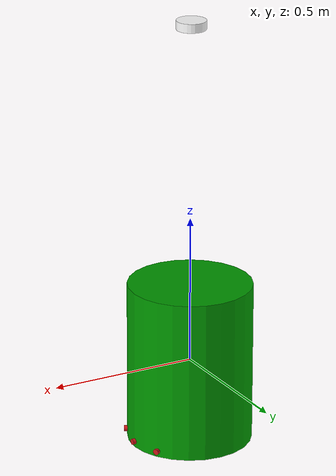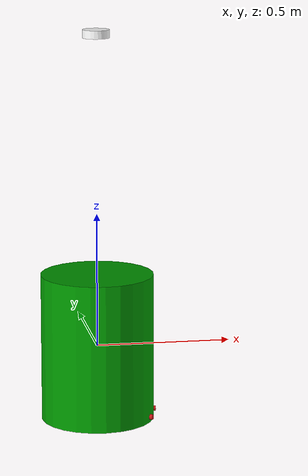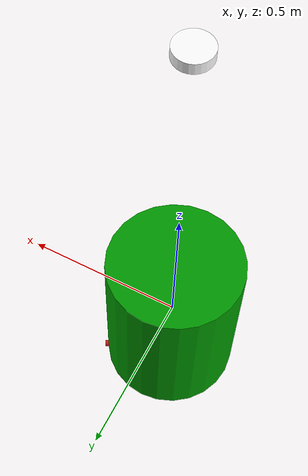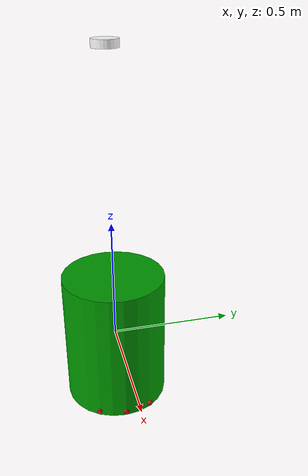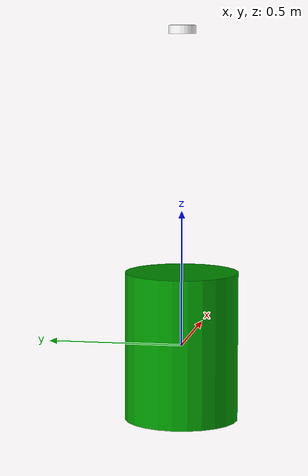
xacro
<?xml version="1.0"?>
<robot xmlns:xacro="http://www.ros.org/wiki/xacro" name="diffbot">

  <!-- === MATERIALS === -->
  <material name="Green">
    <color rgba="0 0.6 0 1"/>
  </material>
  <material name="Grey">
    <color rgba="0.7 0.7 0.7 1"/>
  </material>
  <material name="White">
    <color rgba="1 1 1 1"/>
  </material>
  <material name="Red">
    <color rgba="0.8 0.1 0.1 1"/>
  </material>

  <!-- === PROPERTIES === -->
  <!-- Wheels -->
  <xacro:property name="wheel_radius"       value="0.0325"/>
  <xacro:property name="wheel_separation"   value="0.292"/>
  <xacro:property name="wheel_width"        value="0.027"/>
  <xacro:property name="wheel_mass"         value="0.034"/>
  <xacro:property name="wheel_inertia"      value="${0.5 * wheel_mass * wheel_radius * wheel_radius}"/>

  <!-- Base (cylinder chassis) -->
  <xacro:property name="base_mass"          value="${15 * 0.45359237}"/>
  <xacro:property name="base_radius"        value="0.21"/>
  <xacro:property name="base_height"        value="0.55"/>
  <xacro:property name="ixx" value="${base_mass * (3 * base_radius * base_radius + base_height * base_height) / 12.0}"/>
  <xacro:property name="iyy" value="${base_mass * (3 * base_radius * base_radius + base_height * base_height) / 12.0}"/>
  <xacro:property name="izz" value="${0.5 * base_mass * base_radius * base_radius}"/>

  <!-- Sensors -->
  <xacro:property name="imu_xyz"    value="0 0 ${wheel_radius + 0.01}"/>
  <xacro:property name="imu_rpy"    value="0 0 3.14159"/>
  <xacro:property name="lidar_xyz"  value="0 0 ${wheel_radius + 0.55}"/>
  <xacro:property name="lidar_rpy"  value="0 0 0"/>

  <!-- === LINKS === -->
  <link name="base_link">
    <inertial>
      <mass value="${base_mass}"/>
      <origin xyz="0 0 0" rpy="0 0 0"/>
      <inertia ixx="${ixx}" ixy="0.0" ixz="0.0"
               iyy="${iyy}" iyz="0.0"
               izz="${izz}"/>
    </inertial>
    <visual>
      <geometry>
        <cylinder radius="${base_radius}" length="${base_height}"/>
      </geometry>
      <origin xyz="0 0 0" rpy="0 0 0"/>
      <material name="Green"/>
    </visual>
  </link>

  <link name="wheel_left_link">
    <visual>
      <geometry>
        <cylinder radius="${wheel_radius}" length="${wheel_width}"/>
      </geometry>
      <origin xyz="0 0 0" rpy="1.5707 0 0"/>
      <material name="Grey"/>
    </visual>
  </link>

  <link name="wheel_right_link">
    <visual>
      <geometry>
        <cylinder radius="${wheel_radius}" length="${wheel_width}"/>
      </geometry>
      <origin xyz="0 0 0" rpy="1.5707 0 0"/>
      <material name="Grey"/>
    </visual>
  </link>

  <link name="imu_link">
    <visual>
      <geometry>
        <box size="0.05 0.05 0.02"/>
      </geometry>
      <origin xyz="0 0 0" rpy="0 0 0"/>
      <material name="White"/>
    </visual>
  </link>

  <link name="lidar_link">
    <visual>
      <geometry>
        <cylinder radius="0.05" length="0.03"/>
      </geometry>
      <origin xyz="0 0 ${wheel_radius + 0.55}" rpy="0 0 0"/>
      <material name="White"/>
    </visual>
  </link>

  <!-- === Ultrasonic Sensor Links === -->
<link name="ultrasonic_a_link">
  <visual>
    <geometry>
      <cylinder radius="0.01" length="0.02"/>
    </geometry>
    <origin xyz="0 0 0" rpy="0 1.5708 0"/> <!-- sideways orientation -->
    <material name="Red"/>
  </visual>
</link>

<link name="ultrasonic_b_link">
  <visual>
    <geometry>
      <cylinder radius="0.01" length="0.02"/>
    </geometry>
    <origin xyz="0 0 0" rpy="0 1.5708 0"/>
    <material name="Red"/>
  </visual>
</link>

<link name="ultrasonic_c_link">
  <visual>
    <geometry>
      <cylinder radius="0.01" length="0.02"/>
    </geometry>
    <origin xyz="0 0 0" rpy="0 1.5708 0"/>
    <material name="Red"/>
  </visual>
</link>

  <!-- === JOINTS === -->
  <joint name="wheel_left_joint" type="continuous">
    <parent link="base_link"/>
    <child  link="wheel_left_link"/>
    <origin xyz="0 ${-wheel_separation/2.0} 0" rpy="0 0 0"/>
    <axis xyz="0 1 0"/>
  </joint>

  <joint name="wheel_right_joint" type="continuous">
    <parent link="base_link"/>
    <child  link="wheel_right_link"/>
    <origin xyz="0 ${wheel_separation/2.0} 0" rpy="0 0 0"/>
    <axis xyz="0 1 0"/>
  </joint>

  <joint name="imu_joint" type="fixed">
    <parent link="base_link"/>
    <child  link="imu_link"/>
    <origin xyz="${imu_xyz}" rpy="${imu_rpy}"/>
  </joint>

  <joint name="lidar_joint" type="fixed">
    <parent link="base_link"/>
    <child  link="lidar_link"/>
    <origin xyz="${lidar_xyz}" rpy="${lidar_rpy}"/>
  </joint>

  <!-- === Ultrasonic Sensor Joints === -->
  <joint name="ultrasonic_a_joint" type="fixed">
    <parent link="base_link"/>
    <child link="ultrasonic_a_link"/>
    <origin xyz="${base_radius} 0 ${-base_height/2 + 0.02}" rpy="0 0 0"/>
  </joint>

  <joint name="ultrasonic_b_joint" type="fixed">
    <parent link="base_link"/>
    <child link="ultrasonic_b_link"/>
    <origin xyz="${base_radius * cos(-0.5236)} ${base_radius * sin(-0.5236)} ${-base_height/2 + 0.02}" rpy="0 0 -0.5236"/>
  </joint>

  <joint name="ultrasonic_c_joint" type="fixed">
    <parent link="base_link"/>
    <child link="ultrasonic_c_link"/>
    <origin xyz="${base_radius * cos(0.5236)} ${base_radius * sin(0.5236)} ${-base_height/2 + 0.02}" rpy="0 0 0.5236"/>
  </joint>

  <!-- === ros2_control === -->
  <ros2_control name="diffbot_system" type="system">
    <hardware>
      <plugin>diffbot_hardware/DiffBotSystem</plugin>
      <param name="serial_port">/dev/ttyUSB_TEENSY</param>
      <param name="baud_rate">115200</param>
    </hardware>
    <joint name="wheel_left_joint">
      <command_interface name="velocity"/>
      <state_interface   name="velocity"/>
      <state_interface   name="position"/>
    </joint>
    <joint name="wheel_right_joint">
      <command_interface name="velocity"/>
      <state_interface   name="velocity"/>
      <state_interface   name="position"/>
    </joint>
  </ros2_control>

</robot>
